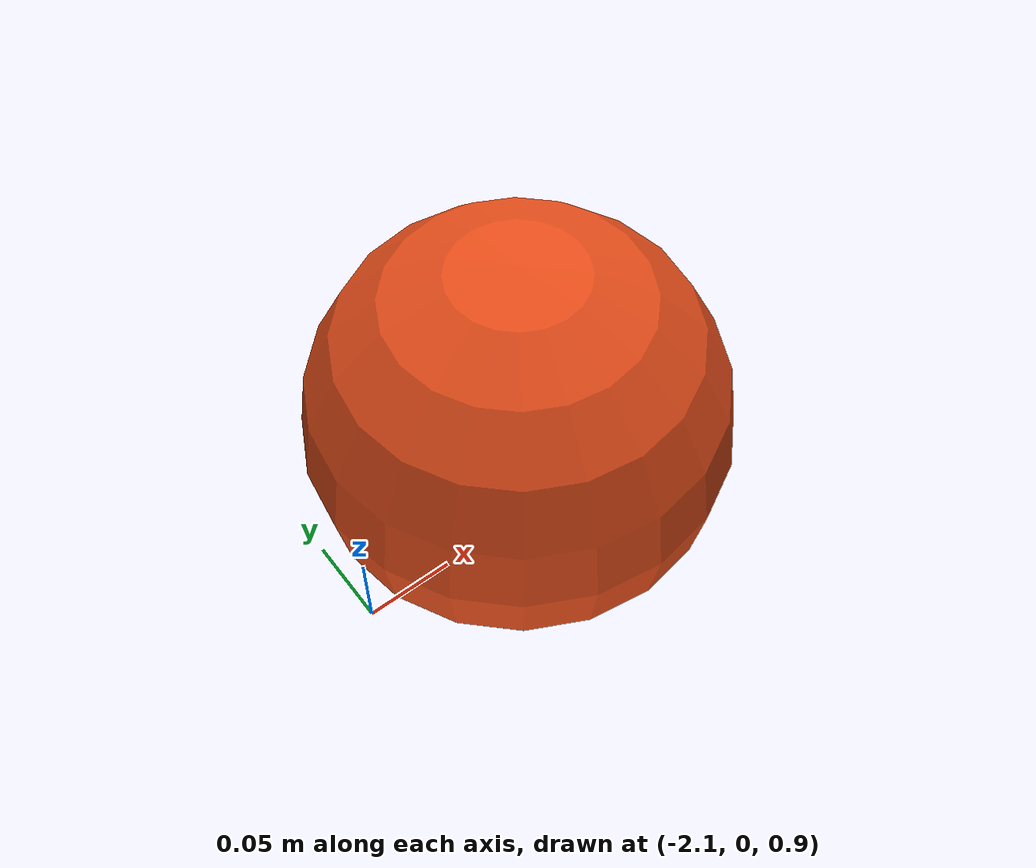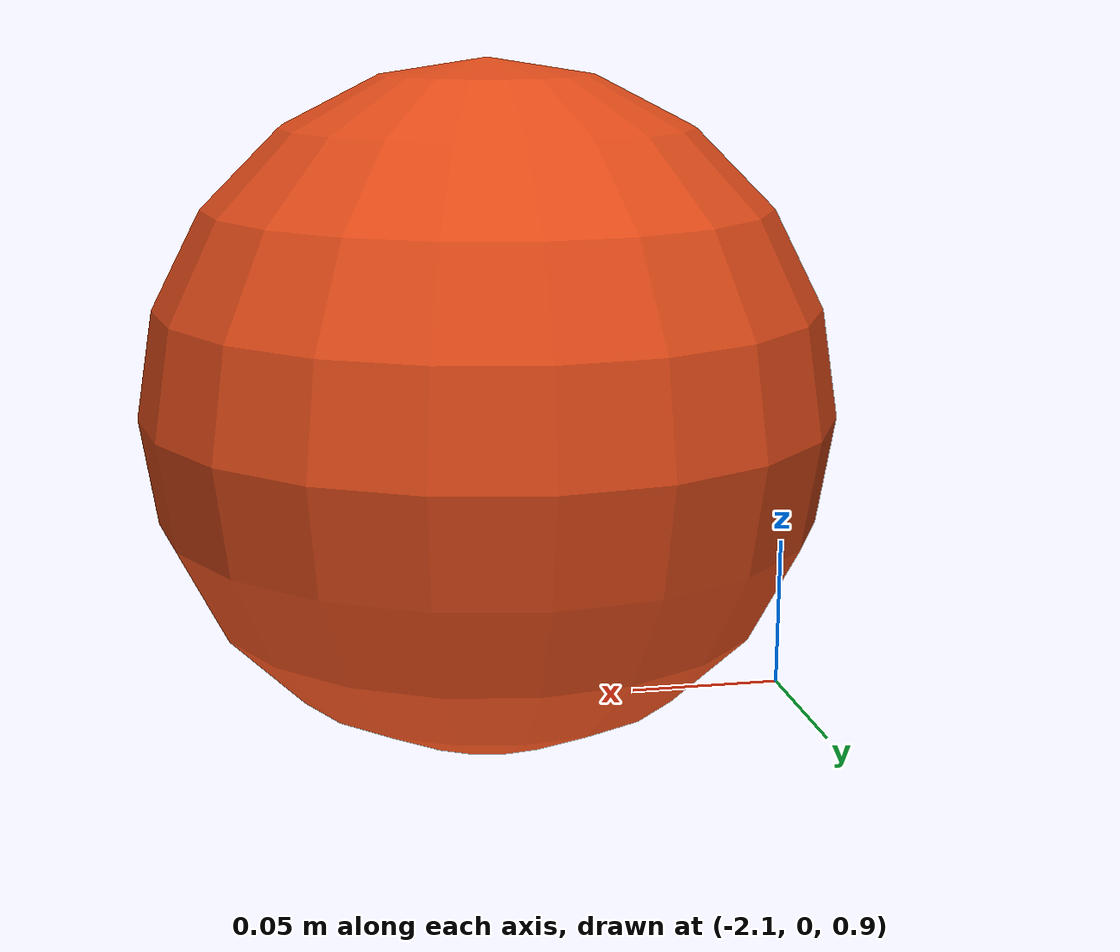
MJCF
<mujoco model="projectile">
  <option timestep="0.04" gravity="0 0 -9.81"/>
  <visual><global offwidth="320" offheight="240"/></visual>
  <worldbody>
    <light pos="0 -4 5"/>
    <camera name="track" pos="5 -8 4" xyaxes="1 0 0 0 0.5 0.87"/>
    <geom name="floor" type="plane" size="8 5 0.1" rgba="0.85 0.85 0.82 1" condim="3"/>
    <body name="ball" pos="-2 0 1">
      <freejoint name="ball_free"/>
      <geom name="ball_geom" type="sphere" size="0.11" mass="1" rgba="0.9 0.3 0.1 1"/>
    </body>
  </worldbody>
</mujoco>
